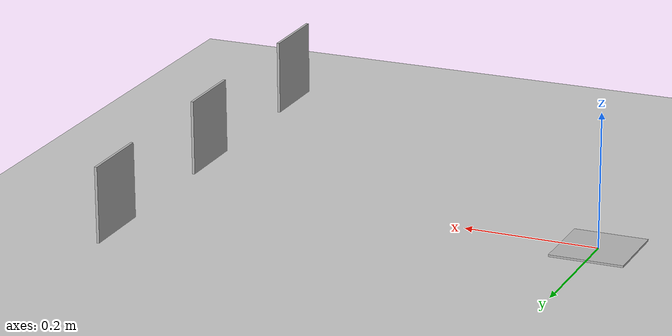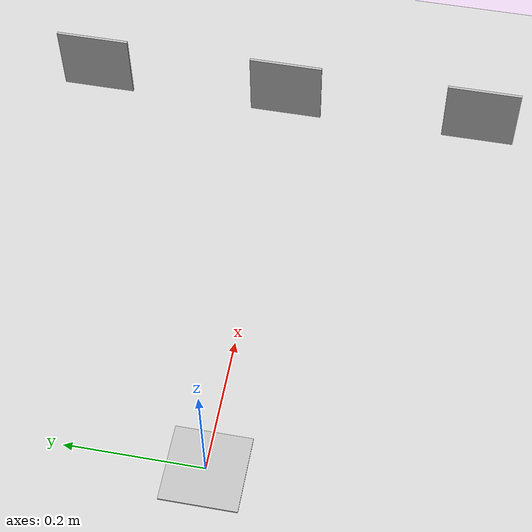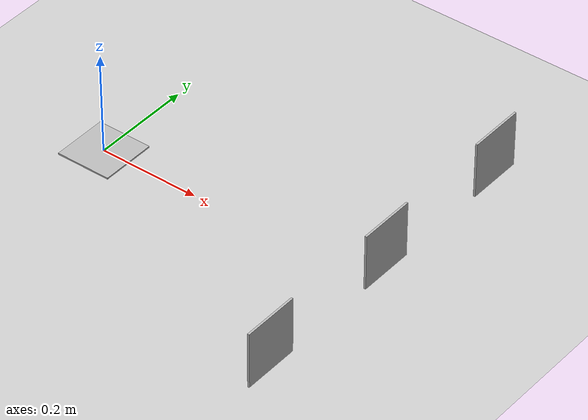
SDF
<sdf version="1.6">
 <world name="default">
  <include><uri>model://sun</uri></include>
  <include><uri>model://ground_plane</uri></include>
  <include><uri>model://marker000</uri><name>marker000</name><static>1</static></include>
  <include><uri>model://marker001</uri><name>marker001</name><static>1</static></include>
  <include><uri>model://marker002</uri><name>marker002</name><static>1</static></include>
  <include><uri>model://marker003</uri><name>marker003</name><static>1</static></include>
  <include><uri>model://marker004</uri><name>marker004</name><static>1</static></include>
  <include><uri>model://marker005</uri><name>marker005</name><static>1</static></include>
  <include><uri>model://marker006</uri><name>marker006</name><static>1</static></include>
  <include><uri>model://marker007</uri><name>marker007</name><static>1</static></include>
  <include><uri>model://marker008</uri><name>marker008</name><static>1</static></include>
  <include><uri>model://marker009</uri><name>marker009</name><static>1</static></include>
 </world>
</sdf>

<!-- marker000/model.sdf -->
<sdf version="1.6">
<model name="marker000">
  <pose>0.6 0.3 0.1 0 1.575 0</pose>
    <link name="link">
      <visual name="visual">
        <geometry>
          <box>
            <size>0.11 0.11 0.004</size>
          </box>
        </geometry>
        <material>
          <script>
            <uri>model://marker000/materials/marker000.material</uri>
            <name>marker000</name>
          </script>
        </material>
      </visual>
    </link>
  </model>
</sdf>

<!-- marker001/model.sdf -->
<sdf version="1.6">
<model name="marker001">
  <pose>0.6 0 0.1 0 1.575 0</pose>
    <link name="link">
      <visual name="visual">
        <geometry>
          <box>
            <size>0.11 0.11 0.004</size>
          </box>
        </geometry>
        <material>
          <script>
            <uri>model://marker001/materials/marker001.material</uri>
            <name>marker001</name>
          </script>
        </material>
      </visual>
    </link>
  </model>
</sdf>

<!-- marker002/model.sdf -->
<sdf version="1.6">
<model name="marker002">
  <pose>0.6 -0.3 0.1 0 1.575 0</pose>
    <link name="link">
      <visual name="visual">
        <geometry>
          <box>
            <size>0.11 0.11 0.004</size>
          </box>
        </geometry>
        <material>
          <script>
            <uri>model://marker002/materials/marker002.material</uri>
            <name>marker002</name>
          </script>
        </material>
      </visual>
    </link>
  </model>
</sdf>

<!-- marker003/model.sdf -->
<sdf version="1.6">
<model name="marker003">
  <pose>0 0 0 0 0 0</pose>
    <link name="link">
      <inertial>
        <mass>1.0</mass>
        <inertia>
          <ixx>0.083</ixx>
          <ixy>0.0</ixy>
          <ixz>0.0</ixz>
          <iyy>0.083</iyy>
          <iyz>0.0</iyz>
          <izz>0.083</izz>
        </inertia>
      </inertial>
      <collision name="collision">
        <geometry>
          <box>
            <size>0.11 0.11 0.004</size>
          </box>
        </geometry>
      </collision>
      <visual name="visual">
        <geometry>
          <box>
            <size>0.11 0.11 0.004</size>
          </box>
        </geometry>
        <material>
          <script>
            <uri>model://marker003/materials/marker003.material</uri>
            <name>marker003</name>
          </script>
        </material>
      </visual>
    </link>
  </model>
</sdf>

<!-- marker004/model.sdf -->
<sdf version="1.6">
<model name="marker004">
  <pose>0 0 0 0 0 0</pose>
    <link name="link">
      <inertial>
        <mass>1.0</mass>
        <inertia>
          <ixx>0.083</ixx>
          <ixy>0.0</ixy>
          <ixz>0.0</ixz>
          <iyy>0.083</iyy>
          <iyz>0.0</iyz>
          <izz>0.083</izz>
        </inertia>
      </inertial>
      <collision name="collision">
        <geometry>
          <box>
            <size>0.11 0.11 0.004</size>
          </box>
        </geometry>
      </collision>
      <visual name="visual">
        <geometry>
          <box>
            <size>0.11 0.11 0.004</size>
          </box>
        </geometry>
        <material>
          <script>
            <uri>model://marker004/materials/marker004.material</uri>
            <name>marker004</name>
          </script>
        </material>
      </visual>
    </link>
  </model>
</sdf>

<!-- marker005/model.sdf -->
<sdf version="1.6">
<model name="marker005">
  <pose>0 0 0 0 0 0</pose>
    <link name="link">
      <inertial>
        <mass>1.0</mass>
        <inertia>
          <ixx>0.083</ixx>
          <ixy>0.0</ixy>
          <ixz>0.0</ixz>
          <iyy>0.083</iyy>
          <iyz>0.0</iyz>
          <izz>0.083</izz>
        </inertia>
      </inertial>
      <collision name="collision">
        <geometry>
          <box>
            <size>0.11 0.11 0.004</size>
          </box>
        </geometry>
      </collision>
      <visual name="visual">
        <geometry>
          <box>
            <size>0.11 0.11 0.004</size>
          </box>
        </geometry>
        <material>
          <script>
            <uri>model://marker005/materials/marker005.material</uri>
            <name>marker005</name>
          </script>
        </material>
      </visual>
    </link>
  </model>
</sdf>

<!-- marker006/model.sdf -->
<sdf version="1.6">
<model name="marker006">
  <pose>0 0 0 0 0 0</pose>
    <link name="link">
      <inertial>
        <mass>1.0</mass>
        <inertia>
          <ixx>0.083</ixx>
          <ixy>0.0</ixy>
          <ixz>0.0</ixz>
          <iyy>0.083</iyy>
          <iyz>0.0</iyz>
          <izz>0.083</izz>
        </inertia>
      </inertial>
      <collision name="collision">
        <geometry>
          <box>
            <size>0.11 0.11 0.004</size>
          </box>
        </geometry>
      </collision>
      <visual name="visual">
        <geometry>
          <box>
            <size>0.11 0.11 0.004</size>
          </box>
        </geometry>
        <material>
          <script>
            <uri>model://marker006/materials/marker006.material</uri>
            <name>marker006</name>
          </script>
        </material>
      </visual>
    </link>
  </model>
</sdf>

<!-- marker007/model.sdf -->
<sdf version="1.6">
<model name="marker007">
  <pose>0 0 0 0 0 0</pose>
    <link name="link">
      <inertial>
        <mass>1.0</mass>
        <inertia>
          <ixx>0.083</ixx>
          <ixy>0.0</ixy>
          <ixz>0.0</ixz>
          <iyy>0.083</iyy>
          <iyz>0.0</iyz>
          <izz>0.083</izz>
        </inertia>
      </inertial>
      <collision name="collision">
        <geometry>
          <box>
            <size>0.11 0.11 0.004</size>
          </box>
        </geometry>
      </collision>
      <visual name="visual">
        <geometry>
          <box>
            <size>0.11 0.11 0.004</size>
          </box>
        </geometry>
        <material>
          <script>
            <uri>model://marker007/materials/marker007.material</uri>
            <name>marker007</name>
          </script>
        </material>
      </visual>
    </link>
  </model>
</sdf>

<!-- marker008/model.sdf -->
<sdf version="1.6">
<model name="marker008">
  <pose>0 0 0 0 0 0</pose>
    <link name="link">
      <inertial>
        <mass>1.0</mass>
        <inertia>
          <ixx>0.083</ixx>
          <ixy>0.0</ixy>
          <ixz>0.0</ixz>
          <iyy>0.083</iyy>
          <iyz>0.0</iyz>
          <izz>0.083</izz>
        </inertia>
      </inertial>
      <collision name="collision">
        <geometry>
          <box>
            <size>0.11 0.11 0.004</size>
          </box>
        </geometry>
      </collision>
      <visual name="visual">
        <geometry>
          <box>
            <size>0.11 0.11 0.004</size>
          </box>
        </geometry>
        <material>
          <script>
            <uri>model://marker008/materials/marker008.material</uri>
            <name>marker008</name>
          </script>
        </material>
      </visual>
    </link>
  </model>
</sdf>

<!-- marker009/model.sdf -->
<sdf version="1.6">
<model name="marker009">
  <pose>0 0 0 0 0 0</pose>
    <link name="link">
      <inertial>
        <mass>1.0</mass>
        <inertia>
          <ixx>0.083</ixx>
          <ixy>0.0</ixy>
          <ixz>0.0</ixz>
          <iyy>0.083</iyy>
          <iyz>0.0</iyz>
          <izz>0.083</izz>
        </inertia>
      </inertial>
      <collision name="collision">
        <geometry>
          <box>
            <size>0.11 0.11 0.004</size>
          </box>
        </geometry>
      </collision>
      <visual name="visual">
        <geometry>
          <box>
            <size>0.11 0.11 0.004</size>
          </box>
        </geometry>
        <material>
          <script>
            <uri>model://marker009/materials/marker009.material</uri>
            <name>marker009</name>
          </script>
        </material>
      </visual>
    </link>
  </model>
</sdf>
